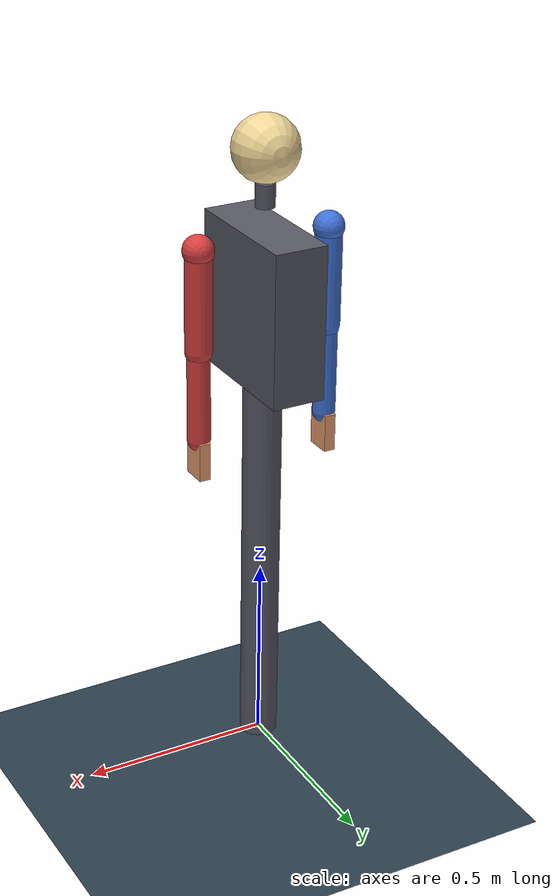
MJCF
<?xml version="1.0" encoding="UTF-8"?>
<mujoco model="upperbody_sim">
  <compiler angle="radian" coordinate="local"/>
  <option timestep="0.002" gravity="0 0 -9.81" integrator="RK4"/>

  <default>
    <joint type="hinge" damping="0.2" armature="0.002"/>
    <geom contype="0" conaffinity="0"/>
    <position kp="60" kv="3"/>
  </default>

  <asset>
    <texture type="skybox" builtin="gradient" rgb1=".3 .5 .7" rgb2="0 0 0" width="100" height="100"/>
    <texture name="grid" type="2d" builtin="checker" rgb1=".15 .2 .25" rgb2=".2 .3 .35" width="300" height="300"/>
    <material name="grid_mat" texture="grid" texrepeat="3 3" reflectance=".2"/>
    <material name="torso_mat" rgba="0.35 0.35 0.40 1"/>
    <material name="right_mat" rgba="0.85 0.25 0.25 1"/>
    <material name="left_mat"  rgba="0.25 0.45 0.85 1"/>
    <material name="head_mat"  rgba="0.95 0.85 0.60 1"/>
    <material name="hand_mat"  rgba="0.95 0.65 0.45 1"/>
  </asset>

  <worldbody>
    <light pos="0.6 0.6 2.5" dir="-0.4 -0.4 -1" diffuse=".9 .9 .9"/>
    <light pos="-0.6 -0.6 2.5" dir="0.4 0.4 -1" diffuse=".4 .4 .4"/>
    <geom name="floor" type="plane" size="3 3 0.1" pos="0 0 0" material="grid_mat"/>

    <!-- root: rotate torso-local y-up frame into world z-up (view only). -->
    <body name="root" pos="0 0 0" euler="1.5708 0 0">
      <body name="pelvis" pos="0 0 0">
        <geom name="post_geom" type="cylinder" fromto="0 0 0 0 1.10 0" size="0.05" material="torso_mat" mass="2.0"/>
        <geom name="torso_geom" type="box" size="0.07 0.20 0.18" pos="0 1.25 0" material="torso_mat" mass="4.0"/>
        <inertial pos="0 1.0 0" mass="6.0" diaginertia="0.1 0.1 0.05"/>

        <!-- Head -->
        <body name="neck_link" pos="0 1.50 0">
          <joint name="neck_yaw_joint" axis="0 1 0" range="-1.57 1.57"/>
          <geom type="cylinder" fromto="0 0 0 0 0.06 0" size="0.025" material="torso_mat" mass="0.1"/>
          <inertial pos="0 0.03 0" mass="0.1" diaginertia="1e-4 1e-4 1e-4"/>
          <body name="head_link" pos="0 0.06 0">
            <joint name="head_pitch_joint" axis="-1 0 0" range="-1.0 1.0"/>
            <geom type="sphere" size="0.085" pos="0 0.085 0" material="head_mat" mass="0.5"/>
            <inertial pos="0 0.085 0" mass="0.5" diaginertia="2e-3 2e-3 2e-3"/>
          </body>
        </body>

        <!-- ===================== RIGHT ARM (+x side) ===================== -->
        <body name="r_shoulder_pitch_link" pos="0.18 1.42 0">
          <joint name="r_shoulder_pitch_joint" axis="0 -1 0" range="-3.14 3.14"/>
          <geom type="sphere" size="0.04" material="right_mat" mass="0.1"/>
          <inertial pos="0 0 0" mass="0.1" diaginertia="1e-4 1e-4 1e-4"/>
          <body name="r_shoulder_roll_link">
            <joint name="r_shoulder_roll_joint" axis="0 0 1" range="-3.14 3.14"/>
            <inertial pos="0 0 0" mass="0.05" diaginertia="1e-4 1e-4 1e-4"/>
            <body name="r_shoulder_yaw_link">
              <joint name="r_shoulder_yaw_joint" axis="0 -1 0" range="-3.14 3.14"/>
              <geom name="r_upper_arm" type="capsule" fromto="0 0 0 0 -0.26 0" size="0.035" material="right_mat" mass="0.4"/>
              <inertial pos="0 -0.13 0" mass="0.4" diaginertia="3e-3 3e-3 5e-4"/>
              <body name="r_elbow_link" pos="0 -0.26 0">
                <joint name="r_elbow_joint" axis="-1 0 0" range="0 3.05"/>
                <geom type="sphere" size="0.032" material="right_mat" mass="0.05"/>
                <inertial pos="0 0 0" mass="0.05" diaginertia="1e-4 1e-4 1e-4"/>
                <body name="r_forearm_link">
                  <joint name="r_wrist_yaw_joint" axis="0 -1 0" range="-3.14 3.14"/>
                  <geom name="r_forearm" type="capsule" fromto="0 0 0 0 -0.24 0" size="0.030" material="right_mat" mass="0.3"/>
                  <inertial pos="0 -0.12 0" mass="0.3" diaginertia="2e-3 2e-3 4e-4"/>
                  <body name="r_hand_link" pos="0 -0.24 0">
                    <joint name="r_wrist_pitch_joint" axis="-1 0 0" range="-1.57 1.57"/>
                    <geom type="box" size="0.015 0.05 0.035" pos="0 -0.05 0" material="hand_mat" mass="0.15"/>
                    <inertial pos="0 -0.05 0" mass="0.15" diaginertia="2e-4 2e-4 2e-4"/>
                  </body>
                </body>
              </body>
            </body>
          </body>
        </body>

        <!-- ===================== LEFT ARM (-x side, mirror) ===================== -->
        <body name="l_shoulder_pitch_link" pos="-0.18 1.42 0">
          <joint name="l_shoulder_pitch_joint" axis="0 1 0" range="-3.14 3.14"/>
          <geom type="sphere" size="0.04" material="left_mat" mass="0.1"/>
          <inertial pos="0 0 0" mass="0.1" diaginertia="1e-4 1e-4 1e-4"/>
          <body name="l_shoulder_roll_link">
            <joint name="l_shoulder_roll_joint" axis="0 0 -1" range="-3.14 3.14"/>
            <inertial pos="0 0 0" mass="0.05" diaginertia="1e-4 1e-4 1e-4"/>
            <body name="l_shoulder_yaw_link">
              <joint name="l_shoulder_yaw_joint" axis="0 -1 0" range="-3.14 3.14"/>
              <geom name="l_upper_arm" type="capsule" fromto="0 0 0 0 -0.26 0" size="0.035" material="left_mat" mass="0.4"/>
              <inertial pos="0 -0.13 0" mass="0.4" diaginertia="3e-3 3e-3 5e-4"/>
              <body name="l_elbow_link" pos="0 -0.26 0">
                <joint name="l_elbow_joint" axis="-1 0 0" range="0 3.05"/>
                <geom type="sphere" size="0.032" material="left_mat" mass="0.05"/>
                <inertial pos="0 0 0" mass="0.05" diaginertia="1e-4 1e-4 1e-4"/>
                <body name="l_forearm_link">
                  <joint name="l_wrist_yaw_joint" axis="0 -1 0" range="-3.14 3.14"/>
                  <geom name="l_forearm" type="capsule" fromto="0 0 0 0 -0.24 0" size="0.030" material="left_mat" mass="0.3"/>
                  <inertial pos="0 -0.12 0" mass="0.3" diaginertia="2e-3 2e-3 4e-4"/>
                  <body name="l_hand_link" pos="0 -0.24 0">
                    <joint name="l_wrist_pitch_joint" axis="-1 0 0" range="-1.57 1.57"/>
                    <geom type="box" size="0.015 0.05 0.035" pos="0 -0.05 0" material="hand_mat" mass="0.15"/>
                    <inertial pos="0 -0.05 0" mass="0.15" diaginertia="2e-4 2e-4 2e-4"/>
                  </body>
                </body>
              </body>
            </body>
          </body>
        </body>
      </body>
    </body>
  </worldbody>

  <actuator>
    <position name="neck_yaw_act"         joint="neck_yaw_joint"         ctrlrange="-1.57 1.57"/>
    <position name="head_pitch_act"       joint="head_pitch_joint"       ctrlrange="-1.0 1.0"/>
    <position name="r_shoulder_pitch_act" joint="r_shoulder_pitch_joint" kp="100" ctrlrange="-3.14 3.14"/>
    <position name="r_shoulder_roll_act"  joint="r_shoulder_roll_joint"  kp="100" ctrlrange="-3.14 3.14"/>
    <position name="r_shoulder_yaw_act"   joint="r_shoulder_yaw_joint"   ctrlrange="-3.14 3.14"/>
    <position name="r_elbow_act"          joint="r_elbow_joint"          ctrlrange="0 3.05"/>
    <position name="r_wrist_yaw_act"      joint="r_wrist_yaw_joint"      ctrlrange="-3.14 3.14"/>
    <position name="r_wrist_pitch_act"    joint="r_wrist_pitch_joint"    ctrlrange="-1.57 1.57"/>
    <position name="l_shoulder_pitch_act" joint="l_shoulder_pitch_joint" kp="100" ctrlrange="-3.14 3.14"/>
    <position name="l_shoulder_roll_act"  joint="l_shoulder_roll_joint"  kp="100" ctrlrange="-3.14 3.14"/>
    <position name="l_shoulder_yaw_act"   joint="l_shoulder_yaw_joint"   ctrlrange="-3.14 3.14"/>
    <position name="l_elbow_act"          joint="l_elbow_joint"          ctrlrange="0 3.05"/>
    <position name="l_wrist_yaw_act"      joint="l_wrist_yaw_joint"      ctrlrange="-3.14 3.14"/>
    <position name="l_wrist_pitch_act"    joint="l_wrist_pitch_joint"    ctrlrange="-1.57 1.57"/>
  </actuator>
</mujoco>
